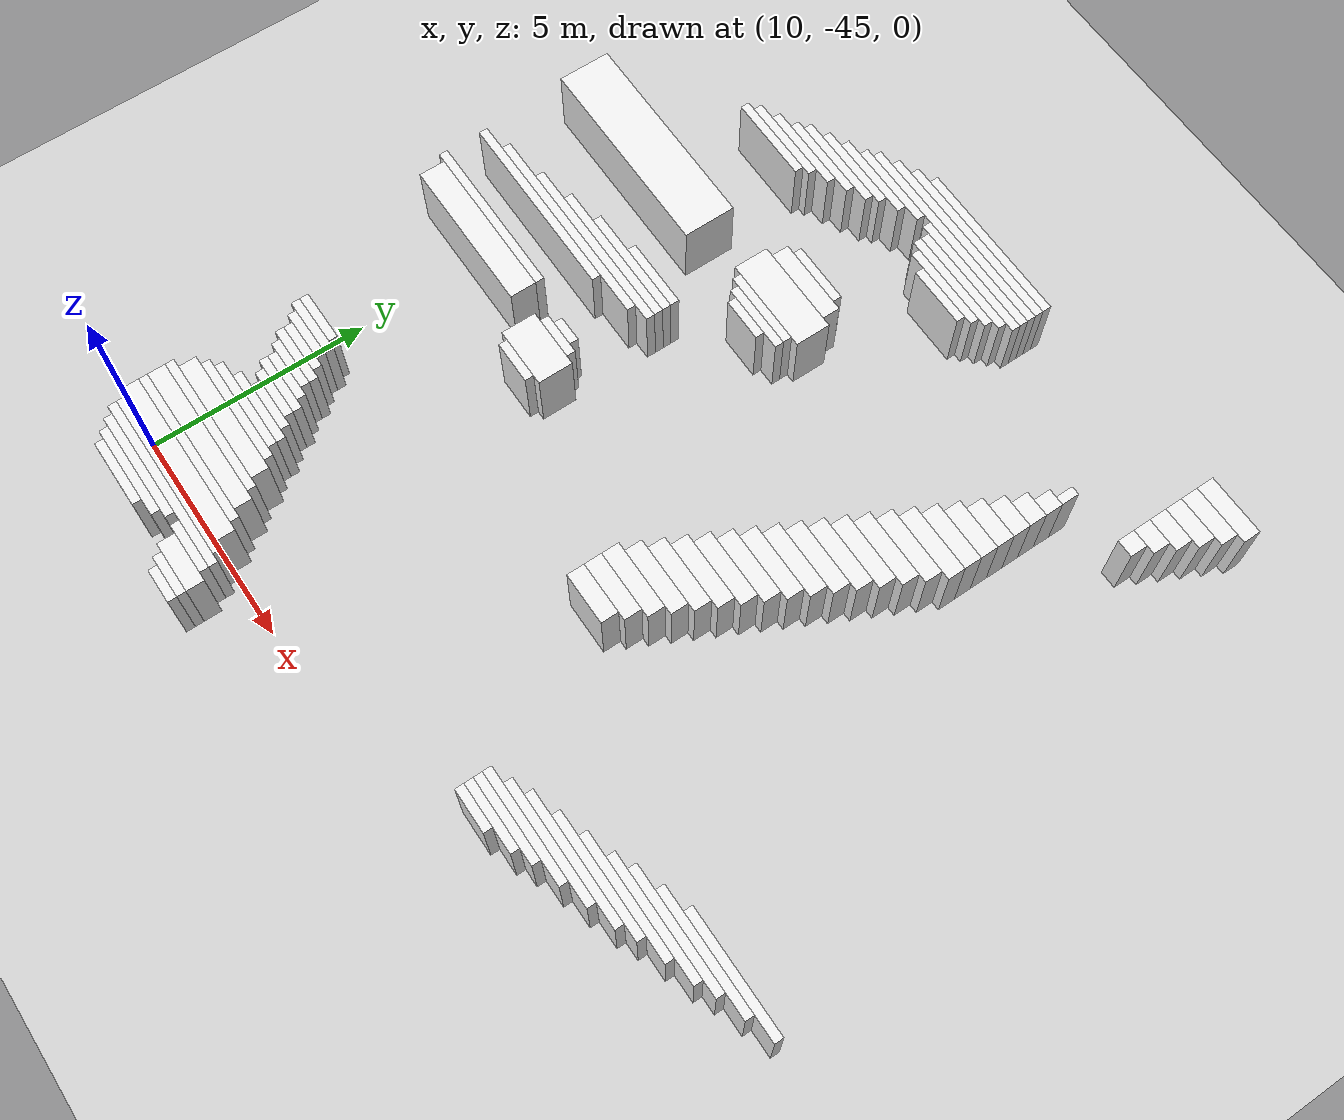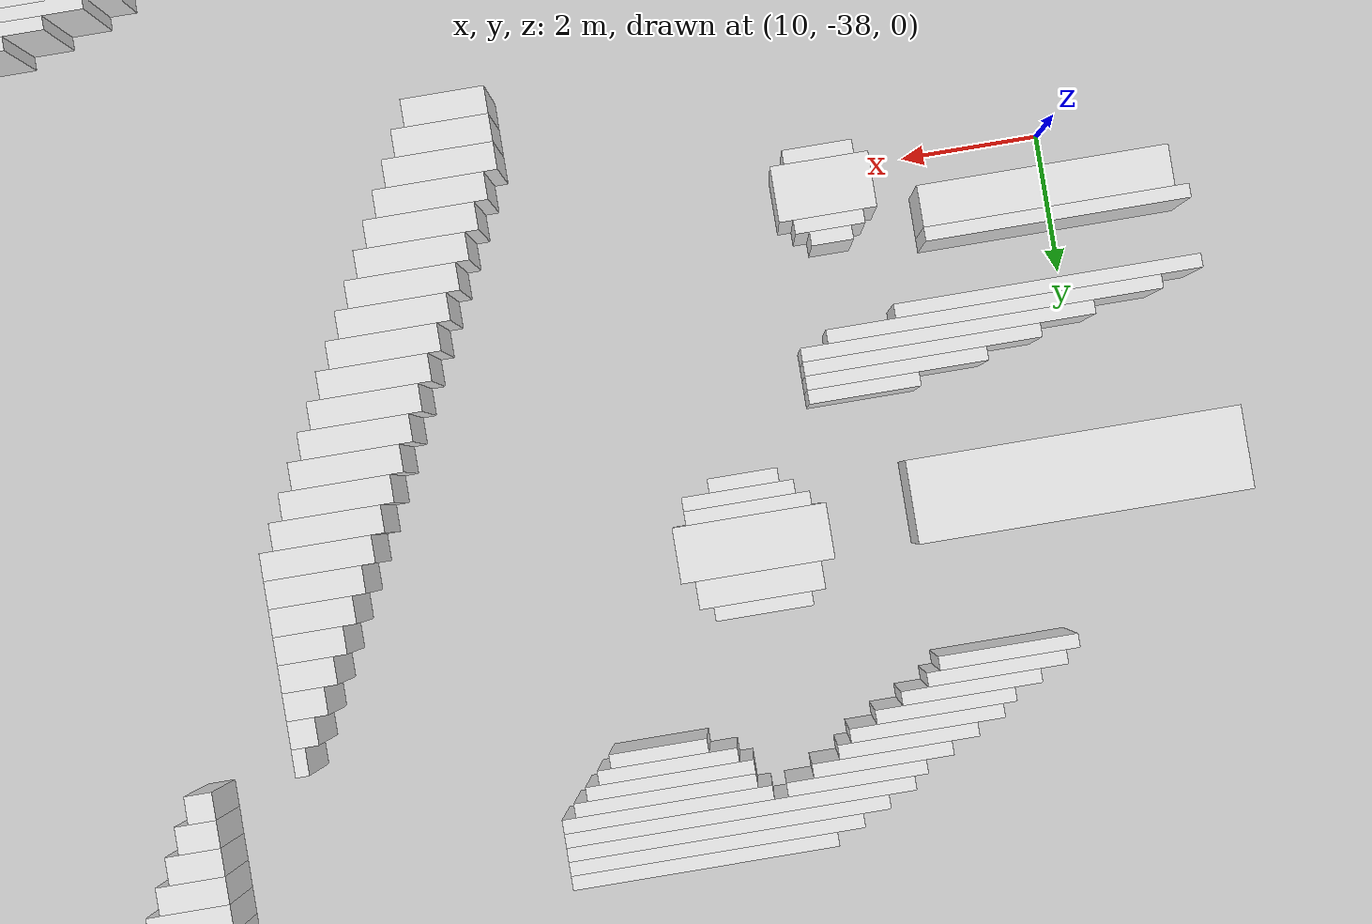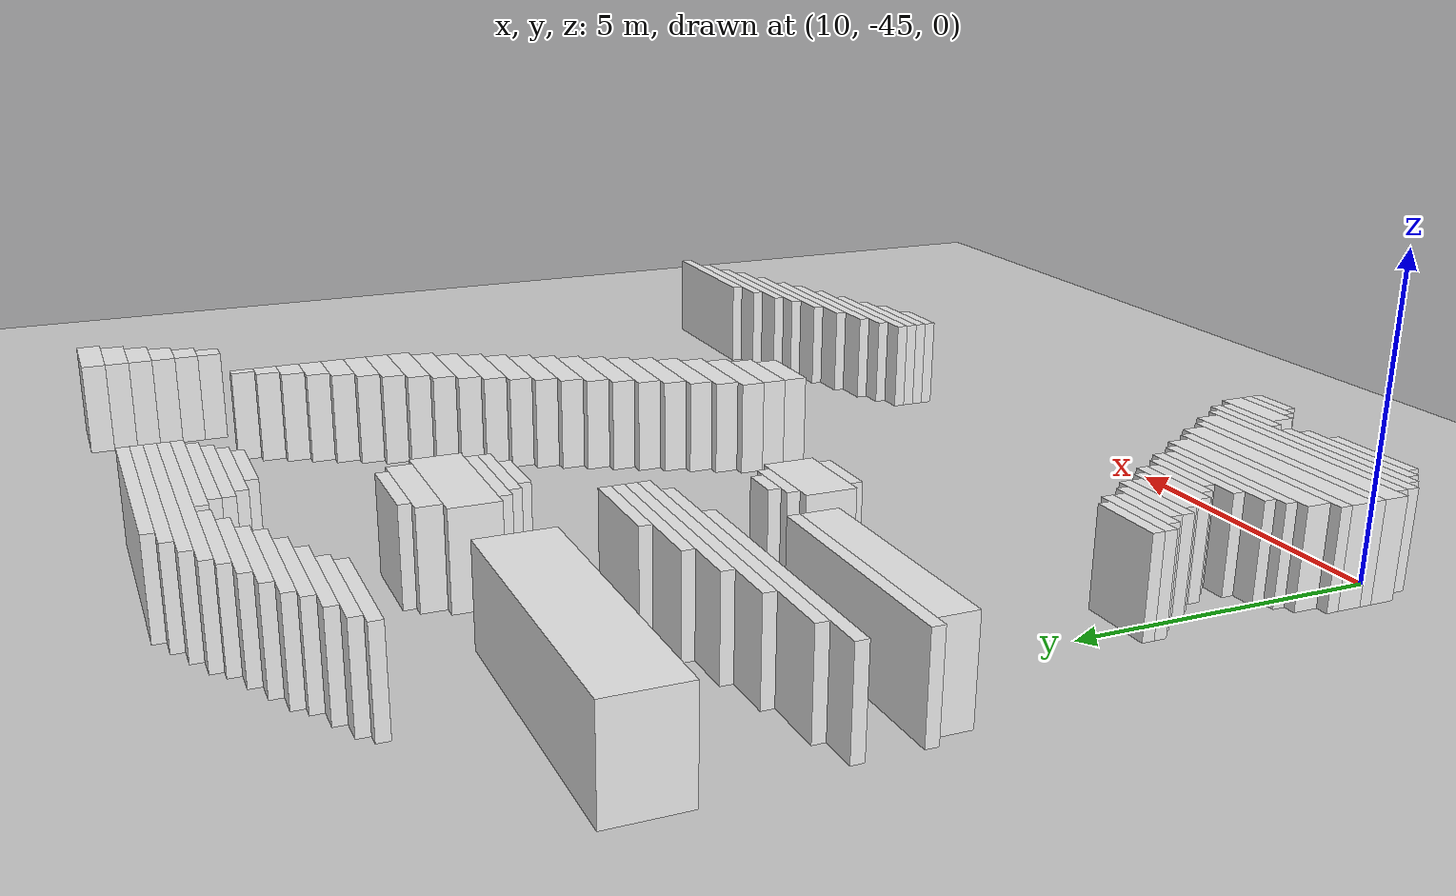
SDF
<sdf version="1.7">
 <world name="default">
  <model name="ground_plane">
   <static>1</static>
   <link name="link">
    <collision name="collision">
     <geometry><plane><normal>0 0 1</normal><size>120 120</size></plane></geometry>
    </collision>
    <visual name="visual">
     <geometry><plane><normal>0 0 1</normal><size>120 120</size></plane></geometry>
     <material>
      <script><uri>file://media/materials/scripts/gazebo.material</uri><name>Gazebo/Grey</name></script>
     </material>
    </visual>
   </link>
  </model>
  <model name="random_complex_01_model">
   <static>1</static>
   <link name="obs_2876">
    <pose>23.9000 -28.4000 0.8000 0 0 0</pose>
    <collision name="obs_2876_col"><geometry><box><size>1.4000 0.4000 1.6000</size></box></geometry></collision>
    <visual name="obs_2876_vis">
     <geometry><box><size>1.4000 0.4000 1.6000</size></box></geometry>
     <material>
      <script><uri>file://media/materials/scripts/gazebo.material</uri><name>Gazebo/White</name></script>
     </material>
    </visual>
   </link>
   <link name="obs_2882">
    <pose>16.5000 -28.5000 0.8000 0 0 0</pose>
    <collision name="obs_2882_col"><geometry><box><size>3.8000 0.2000 1.6000</size></box></geometry></collision>
    <visual name="obs_2882_vis">
     <geometry><box><size>3.8000 0.2000 1.6000</size></box></geometry>
     <material>
      <script><uri>file://media/materials/scripts/gazebo.material</uri><name>Gazebo/White</name></script>
     </material>
    </visual>
   </link>
   <link name="obs_2893">
    <pose>16.3000 -28.7000 0.8000 0 0 0</pose>
    <collision name="obs_2893_col"><geometry><box><size>4.2000 0.2000 1.6000</size></box></geometry></collision>
    <visual name="obs_2893_vis">
     <geometry><box><size>4.2000 0.2000 1.6000</size></box></geometry>
     <material>
      <script><uri>file://media/materials/scripts/gazebo.material</uri><name>Gazebo/White</name></script>
     </material>
    </visual>
   </link>
   <link name="obs_2896">
    <pose>23.8000 -28.8000 0.8000 0 0 0</pose>
    <collision name="obs_2896_col"><geometry><box><size>1.2000 0.4000 1.6000</size></box></geometry></collision>
    <visual name="obs_2896_vis">
     <geometry><box><size>1.2000 0.4000 1.6000</size></box></geometry>
     <material>
      <script><uri>file://media/materials/scripts/gazebo.material</uri><name>Gazebo/White</name></script>
     </material>
    </visual>
   </link>
   <link name="obs_2901">
    <pose>16.1000 -28.9000 0.8000 0 0 0</pose>
    <collision name="obs_2901_col"><geometry><box><size>4.6000 0.2000 1.6000</size></box></geometry></collision>
    <visual name="obs_2901_vis">
     <geometry><box><size>4.6000 0.2000 1.6000</size></box></geometry>
     <material>
      <script><uri>file://media/materials/scripts/gazebo.material</uri><name>Gazebo/White</name></script>
     </material>
    </visual>
   </link>
   <link name="obs_2907">
    <pose>15.9000 -29.1000 0.8000 0 0 0</pose>
    <collision name="obs_2907_col"><geometry><box><size>5.0000 0.2000 1.6000</size></box></geometry></collision>
    <visual name="obs_2907_vis">
     <geometry><box><size>5.0000 0.2000 1.6000</size></box></geometry>
     <material>
      <script><uri>file://media/materials/scripts/gazebo.material</uri><name>Gazebo/White</name></script>
     </material>
    </visual>
   </link>
   <link name="obs_2910">
    <pose>23.7000 -29.2000 0.8000 0 0 0</pose>
    <collision name="obs_2910_col"><geometry><box><size>1.0000 0.4000 1.6000</size></box></geometry></collision>
    <visual name="obs_2910_vis">
     <geometry><box><size>1.0000 0.4000 1.6000</size></box></geometry>
     <material>
      <script><uri>file://media/materials/scripts/gazebo.material</uri><name>Gazebo/White</name></script>
     </material>
    </visual>
   </link>
   <link name="obs_2913">
    <pose>14.2000 -29.3000 0.8000 0 0 0</pose>
    <collision name="obs_2913_col"><geometry><box><size>2.0000 0.2000 1.6000</size></box></geometry></collision>
    <visual name="obs_2913_vis">
     <geometry><box><size>2.0000 0.2000 1.6000</size></box></geometry>
     <material>
      <script><uri>file://media/materials/scripts/gazebo.material</uri><name>Gazebo/White</name></script>
     </material>
    </visual>
   </link>
   <link name="obs_2914">
    <pose>16.9000 -29.3000 0.8000 0 0 0</pose>
    <collision name="obs_2914_col"><geometry><box><size>3.0000 0.2000 1.6000</size></box></geometry></collision>
    <visual name="obs_2914_vis">
     <geometry><box><size>3.0000 0.2000 1.6000</size></box></geometry>
     <material>
      <script><uri>file://media/materials/scripts/gazebo.material</uri><name>Gazebo/White</name></script>
     </material>
    </visual>
   </link>
   <link name="obs_2918">
    <pose>13.8000 -29.5000 0.8000 0 0 0</pose>
    <collision name="obs_2918_col"><geometry><box><size>2.0000 0.2000 1.6000</size></box></geometry></collision>
    <visual name="obs_2918_vis">
     <geometry><box><size>2.0000 0.2000 1.6000</size></box></geometry>
     <material>
      <script><uri>file://media/materials/scripts/gazebo.material</uri><name>Gazebo/White</name></script>
     </material>
    </visual>
   </link>
   <link name="obs_2919">
    <pose>16.9000 -29.5000 0.8000 0 0 0</pose>
    <collision name="obs_2919_col"><geometry><box><size>2.6000 0.2000 1.6000</size></box></geometry></collision>
    <visual name="obs_2919_vis">
     <geometry><box><size>2.6000 0.2000 1.6000</size></box></geometry>
     <material>
      <script><uri>file://media/materials/scripts/gazebo.material</uri><name>Gazebo/White</name></script>
     </material>
    </visual>
   </link>
   <link name="obs_2922">
    <pose>23.6000 -29.6000 0.8000 0 0 0</pose>
    <collision name="obs_2922_col"><geometry><box><size>0.8000 0.4000 1.6000</size></box></geometry></collision>
    <visual name="obs_2922_vis">
     <geometry><box><size>0.8000 0.4000 1.6000</size></box></geometry>
     <material>
      <script><uri>file://media/materials/scripts/gazebo.material</uri><name>Gazebo/White</name></script>
     </material>
    </visual>
   </link>
   <link name="obs_2925">
    <pose>13.4000 -29.7000 0.8000 0 0 0</pose>
    <collision name="obs_2925_col"><geometry><box><size>2.0000 0.2000 1.6000</size></box></geometry></collision>
    <visual name="obs_2925_vis">
     <geometry><box><size>2.0000 0.2000 1.6000</size></box></geometry>
     <material>
      <script><uri>file://media/materials/scripts/gazebo.material</uri><name>Gazebo/White</name></script>
     </material>
    </visual>
   </link>
   <link name="obs_2926">
    <pose>16.8000 -29.7000 0.8000 0 0 0</pose>
    <collision name="obs_2926_col"><geometry><box><size>2.4000 0.2000 1.6000</size></box></geometry></collision>
    <visual name="obs_2926_vis">
     <geometry><box><size>2.4000 0.2000 1.6000</size></box></geometry>
     <material>
      <script><uri>file://media/materials/scripts/gazebo.material</uri><name>Gazebo/White</name></script>
     </material>
    </visual>
   </link>
   <link name="obs_2933">
    <pose>13.1000 -29.9000 0.8000 0 0 0</pose>
    <collision name="obs_2933_col"><geometry><box><size>2.2000 0.2000 1.6000</size></box></geometry></collision>
    <visual name="obs_2933_vis">
     <geometry><box><size>2.2000 0.2000 1.6000</size></box></geometry>
     <material>
      <script><uri>file://media/materials/scripts/gazebo.material</uri><name>Gazebo/White</name></script>
     </material>
    </visual>
   </link>
   <link name="obs_2934">
    <pose>16.8000 -29.9000 0.8000 0 0 0</pose>
    <collision name="obs_2934_col"><geometry><box><size>2.0000 0.2000 1.6000</size></box></geometry></collision>
    <visual name="obs_2934_vis">
     <geometry><box><size>2.0000 0.2000 1.6000</size></box></geometry>
     <material>
      <script><uri>file://media/materials/scripts/gazebo.material</uri><name>Gazebo/White</name></script>
     </material>
    </visual>
   </link>
   <link name="obs_2936">
    <pose>23.5000 -30.0000 0.8000 0 0 0</pose>
    <collision name="obs_2936_col"><geometry><box><size>0.6000 0.4000 1.6000</size></box></geometry></collision>
    <visual name="obs_2936_vis">
     <geometry><box><size>0.6000 0.4000 1.6000</size></box></geometry>
     <material>
      <script><uri>file://media/materials/scripts/gazebo.material</uri><name>Gazebo/White</name></script>
     </material>
    </visual>
   </link>
   <link name="obs_2940">
    <pose>12.8000 -30.1000 0.8000 0 0 0</pose>
    <collision name="obs_2940_col"><geometry><box><size>2.0000 0.2000 1.6000</size></box></geometry></collision>
    <visual name="obs_2940_vis">
     <geometry><box><size>2.0000 0.2000 1.6000</size></box></geometry>
     <material>
      <script><uri>file://media/materials/scripts/gazebo.material</uri><name>Gazebo/White</name></script>
     </material>
    </visual>
   </link>
   <link name="obs_2941">
    <pose>16.9000 -30.1000 0.8000 0 0 0</pose>
    <collision name="obs_2941_col"><geometry><box><size>1.4000 0.2000 1.6000</size></box></geometry></collision>
    <visual name="obs_2941_vis">
     <geometry><box><size>1.4000 0.2000 1.6000</size></box></geometry>
     <material>
      <script><uri>file://media/materials/scripts/gazebo.material</uri><name>Gazebo/White</name></script>
     </material>
    </visual>
   </link>
   <link name="obs_2946">
    <pose>12.4000 -30.3000 0.8000 0 0 0</pose>
    <collision name="obs_2946_col"><geometry><box><size>2.0000 0.2000 1.6000</size></box></geometry></collision>
    <visual name="obs_2946_vis">
     <geometry><box><size>2.0000 0.2000 1.6000</size></box></geometry>
     <material>
      <script><uri>file://media/materials/scripts/gazebo.material</uri><name>Gazebo/White</name></script>
     </material>
    </visual>
   </link>
   <link name="obs_2948">
    <pose>23.4000 -30.4000 0.8000 0 0 0</pose>
    <collision name="obs_2948_col"><geometry><box><size>0.4000 0.4000 1.6000</size></box></geometry></collision>
    <visual name="obs_2948_vis">
     <geometry><box><size>0.4000 0.4000 1.6000</size></box></geometry>
     <material>
      <script><uri>file://media/materials/scripts/gazebo.material</uri><name>Gazebo/White</name></script>
     </material>
    </visual>
   </link>
   <link name="obs_2952">
    <pose>12.0000 -30.5000 0.8000 0 0 0</pose>
    <collision name="obs_2952_col"><geometry><box><size>2.0000 0.2000 1.6000</size></box></geometry></collision>
    <visual name="obs_2952_vis">
     <geometry><box><size>2.0000 0.2000 1.6000</size></box></geometry>
     <material>
      <script><uri>file://media/materials/scripts/gazebo.material</uri><name>Gazebo/White</name></script>
     </material>
    </visual>
   </link>
   <link name="obs_2960">
    <pose>11.8000 -30.7000 0.8000 0 0 0</pose>
    <collision name="obs_2960_col"><geometry><box><size>2.0000 0.2000 1.6000</size></box></geometry></collision>
    <visual name="obs_2960_vis">
     <geometry><box><size>2.0000 0.2000 1.6000</size></box></geometry>
     <material>
      <script><uri>file://media/materials/scripts/gazebo.material</uri><name>Gazebo/White</name></script>
     </material>
    </visual>
   </link>
   <link name="obs_2962">
    <pose>21.9000 -30.8000 0.8000 0 0 0</pose>
    <collision name="obs_2962_col"><geometry><box><size>0.2000 0.4000 1.6000</size></box></geometry></collision>
    <visual name="obs_2962_vis">
     <geometry><box><size>0.2000 0.4000 1.6000</size></box></geometry>
     <material>
      <script><uri>file://media/materials/scripts/gazebo.material</uri><name>Gazebo/White</name></script>
     </material>
    </visual>
   </link>
   <link name="obs_2975">
    <pose>21.8000 -31.2000 0.8000 0 0 0</pose>
    <collision name="obs_2975_col"><geometry><box><size>0.4000 0.4000 1.6000</size></box></geometry></collision>
    <visual name="obs_2975_vis">
     <geometry><box><size>0.4000 0.4000 1.6000</size></box></geometry>
     <material>
      <script><uri>file://media/materials/scripts/gazebo.material</uri><name>Gazebo/White</name></script>
     </material>
    </visual>
   </link>
   <link name="obs_2987">
    <pose>21.7000 -31.6000 0.8000 0 0 0</pose>
    <collision name="obs_2987_col"><geometry><box><size>0.6000 0.4000 1.6000</size></box></geometry></collision>
    <visual name="obs_2987_vis">
     <geometry><box><size>0.6000 0.4000 1.6000</size></box></geometry>
     <material>
      <script><uri>file://media/materials/scripts/gazebo.material</uri><name>Gazebo/White</name></script>
     </material>
    </visual>
   </link>
   <link name="obs_2997">
    <pose>15.1000 -31.9000 0.8000 0 0 0</pose>
    <collision name="obs_2997_col"><geometry><box><size>1.4000 0.2000 1.6000</size></box></geometry></collision>
    <visual name="obs_2997_vis">
     <geometry><box><size>1.4000 0.2000 1.6000</size></box></geometry>
     <material>
      <script><uri>file://media/materials/scripts/gazebo.material</uri><name>Gazebo/White</name></script>
     </material>
    </visual>
   </link>
   <link name="obs_3000">
    <pose>21.6000 -32.0000 0.8000 0 0 0</pose>
    <collision name="obs_3000_col"><geometry><box><size>0.8000 0.4000 1.6000</size></box></geometry></collision>
    <visual name="obs_3000_vis">
     <geometry><box><size>0.8000 0.4000 1.6000</size></box></geometry>
     <material>
      <script><uri>file://media/materials/scripts/gazebo.material</uri><name>Gazebo/White</name></script>
     </material>
    </visual>
   </link>
   <link name="obs_3006">
    <pose>15.1000 -32.2000 0.8000 0 0 0</pose>
    <collision name="obs_3006_col"><geometry><box><size>1.8000 0.4000 1.6000</size></box></geometry></collision>
    <visual name="obs_3006_vis">
     <geometry><box><size>1.8000 0.4000 1.6000</size></box></geometry>
     <material>
      <script><uri>file://media/materials/scripts/gazebo.material</uri><name>Gazebo/White</name></script>
     </material>
    </visual>
   </link>
   <link name="obs_3013">
    <pose>21.5000 -32.4000 0.8000 0 0 0</pose>
    <collision name="obs_3013_col"><geometry><box><size>1.0000 0.4000 1.6000</size></box></geometry></collision>
    <visual name="obs_3013_vis">
     <geometry><box><size>1.0000 0.4000 1.6000</size></box></geometry>
     <material>
      <script><uri>file://media/materials/scripts/gazebo.material</uri><name>Gazebo/White</name></script>
     </material>
    </visual>
   </link>
   <link name="obs_3029">
    <pose>21.4000 -32.8000 0.8000 0 0 0</pose>
    <collision name="obs_3029_col"><geometry><box><size>1.2000 0.4000 1.6000</size></box></geometry></collision>
    <visual name="obs_3029_vis">
     <geometry><box><size>1.2000 0.4000 1.6000</size></box></geometry>
     <material>
      <script><uri>file://media/materials/scripts/gazebo.material</uri><name>Gazebo/White</name></script>
     </material>
    </visual>
   </link>
   <link name="obs_3035">
    <pose>15.1000 -32.8000 0.8000 0 0 0</pose>
    <collision name="obs_3035_col"><geometry><box><size>2.2000 0.8000 1.6000</size></box></geometry></collision>
    <visual name="obs_3035_vis">
     <geometry><box><size>2.2000 0.8000 1.6000</size></box></geometry>
     <material>
      <script><uri>file://media/materials/scripts/gazebo.material</uri><name>Gazebo/White</name></script>
     </material>
    </visual>
   </link>
   <link name="obs_3045">
    <pose>21.3000 -33.2000 0.8000 0 0 0</pose>
    <collision name="obs_3045_col"><geometry><box><size>1.4000 0.4000 1.6000</size></box></geometry></collision>
    <visual name="obs_3045_vis">
     <geometry><box><size>1.4000 0.4000 1.6000</size></box></geometry>
     <material>
      <script><uri>file://media/materials/scripts/gazebo.material</uri><name>Gazebo/White</name></script>
     </material>
    </visual>
   </link>
   <link name="obs_3051">
    <pose>15.1000 -33.3000 0.8000 0 0 0</pose>
    <collision name="obs_3051_col"><geometry><box><size>1.8000 0.2000 1.6000</size></box></geometry></collision>
    <visual name="obs_3051_vis">
     <geometry><box><size>1.8000 0.2000 1.6000</size></box></geometry>
     <material>
      <script><uri>file://media/materials/scripts/gazebo.material</uri><name>Gazebo/White</name></script>
     </material>
    </visual>
   </link>
   <link name="obs_3054">
    <pose>10.4000 -33.0000 0.8000 0 0 0</pose>
    <collision name="obs_3054_col"><geometry><box><size>4.8000 1.2000 1.6000</size></box></geometry></collision>
    <visual name="obs_3054_vis">
     <geometry><box><size>4.8000 1.2000 1.6000</size></box></geometry>
     <material>
      <script><uri>file://media/materials/scripts/gazebo.material</uri><name>Gazebo/White</name></script>
     </material>
    </visual>
   </link>
   <link name="obs_3058">
    <pose>15.2000 -33.5000 0.8000 0 0 0</pose>
    <collision name="obs_3058_col"><geometry><box><size>1.6000 0.2000 1.6000</size></box></geometry></collision>
    <visual name="obs_3058_vis">
     <geometry><box><size>1.6000 0.2000 1.6000</size></box></geometry>
     <material>
      <script><uri>file://media/materials/scripts/gazebo.material</uri><name>Gazebo/White</name></script>
     </material>
    </visual>
   </link>
   <link name="obs_3061">
    <pose>21.2000 -33.6000 0.8000 0 0 0</pose>
    <collision name="obs_3061_col"><geometry><box><size>1.6000 0.4000 1.6000</size></box></geometry></collision>
    <visual name="obs_3061_vis">
     <geometry><box><size>1.6000 0.4000 1.6000</size></box></geometry>
     <material>
      <script><uri>file://media/materials/scripts/gazebo.material</uri><name>Gazebo/White</name></script>
     </material>
    </visual>
   </link>
   <link name="obs_3066">
    <pose>15.1000 -33.7000 0.8000 0 0 0</pose>
    <collision name="obs_3066_col"><geometry><box><size>1.0000 0.2000 1.6000</size></box></geometry></collision>
    <visual name="obs_3066_vis">
     <geometry><box><size>1.0000 0.2000 1.6000</size></box></geometry>
     <material>
      <script><uri>file://media/materials/scripts/gazebo.material</uri><name>Gazebo/White</name></script>
     </material>
    </visual>
   </link>
   <link name="obs_3078">
    <pose>21.0000 -34.0000 0.8000 0 0 0</pose>
    <collision name="obs_3078_col"><geometry><box><size>1.6000 0.4000 1.6000</size></box></geometry></collision>
    <visual name="obs_3078_vis">
     <geometry><box><size>1.6000 0.4000 1.6000</size></box></geometry>
     <material>
      <script><uri>file://media/materials/scripts/gazebo.material</uri><name>Gazebo/White</name></script>
     </material>
    </visual>
   </link>
   <link name="obs_3092">
    <pose>20.8000 -34.4000 0.8000 0 0 0</pose>
    <collision name="obs_3092_col"><geometry><box><size>1.6000 0.4000 1.6000</size></box></geometry></collision>
    <visual name="obs_3092_vis">
     <geometry><box><size>1.6000 0.4000 1.6000</size></box></geometry>
     <material>
      <script><uri>file://media/materials/scripts/gazebo.material</uri><name>Gazebo/White</name></script>
     </material>
    </visual>
   </link>
   <link name="obs_3102">
    <pose>13.2000 -34.7000 0.8000 0 0 0</pose>
    <collision name="obs_3102_col"><geometry><box><size>1.6000 0.2000 1.6000</size></box></geometry></collision>
    <visual name="obs_3102_vis">
     <geometry><box><size>1.6000 0.2000 1.6000</size></box></geometry>
     <material>
      <script><uri>file://media/materials/scripts/gazebo.material</uri><name>Gazebo/White</name></script>
     </material>
    </visual>
   </link>
   <link name="obs_3108">
    <pose>20.6000 -34.8000 0.8000 0 0 0</pose>
    <collision name="obs_3108_col"><geometry><box><size>1.6000 0.4000 1.6000</size></box></geometry></collision>
    <visual name="obs_3108_vis">
     <geometry><box><size>1.6000 0.4000 1.6000</size></box></geometry>
     <material>
      <script><uri>file://media/materials/scripts/gazebo.material</uri><name>Gazebo/White</name></script>
     </material>
    </visual>
   </link>
   <link name="obs_3113">
    <pose>12.7000 -34.9000 0.8000 0 0 0</pose>
    <collision name="obs_3113_col"><geometry><box><size>2.6000 0.2000 1.6000</size></box></geometry></collision>
    <visual name="obs_3113_vis">
     <geometry><box><size>2.6000 0.2000 1.6000</size></box></geometry>
     <material>
      <script><uri>file://media/materials/scripts/gazebo.material</uri><name>Gazebo/White</name></script>
     </material>
    </visual>
   </link>
   <link name="obs_3119">
    <pose>12.3000 -35.1000 0.8000 0 0 0</pose>
    <collision name="obs_3119_col"><geometry><box><size>3.4000 0.2000 1.6000</size></box></geometry></collision>
    <visual name="obs_3119_vis">
     <geometry><box><size>3.4000 0.2000 1.6000</size></box></geometry>
     <material>
      <script><uri>file://media/materials/scripts/gazebo.material</uri><name>Gazebo/White</name></script>
     </material>
    </visual>
   </link>
   <link name="obs_3121">
    <pose>20.4000 -35.2000 0.8000 0 0 0</pose>
    <collision name="obs_3121_col"><geometry><box><size>1.6000 0.4000 1.6000</size></box></geometry></collision>
    <visual name="obs_3121_vis">
     <geometry><box><size>1.6000 0.4000 1.6000</size></box></geometry>
     <material>
      <script><uri>file://media/materials/scripts/gazebo.material</uri><name>Gazebo/White</name></script>
     </material>
    </visual>
   </link>
   <link name="obs_3126">
    <pose>11.9000 -35.3000 0.8000 0 0 0</pose>
    <collision name="obs_3126_col"><geometry><box><size>4.2000 0.2000 1.6000</size></box></geometry></collision>
    <visual name="obs_3126_vis">
     <geometry><box><size>4.2000 0.2000 1.6000</size></box></geometry>
     <material>
      <script><uri>file://media/materials/scripts/gazebo.material</uri><name>Gazebo/White</name></script>
     </material>
    </visual>
   </link>
   <link name="obs_3135">
    <pose>11.2000 -35.5000 0.8000 0 0 0</pose>
    <collision name="obs_3135_col"><geometry><box><size>4.8000 0.2000 1.6000</size></box></geometry></collision>
    <visual name="obs_3135_vis">
     <geometry><box><size>4.8000 0.2000 1.6000</size></box></geometry>
     <material>
      <script><uri>file://media/materials/scripts/gazebo.material</uri><name>Gazebo/White</name></script>
     </material>
    </visual>
   </link>
   <link name="obs_3138">
    <pose>20.2000 -35.6000 0.8000 0 0 0</pose>
    <collision name="obs_3138_col"><geometry><box><size>1.6000 0.4000 1.6000</size></box></geometry></collision>
    <visual name="obs_3138_vis">
     <geometry><box><size>1.6000 0.4000 1.6000</size></box></geometry>
     <material>
      <script><uri>file://media/materials/scripts/gazebo.material</uri><name>Gazebo/White</name></script>
     </material>
    </visual>
   </link>
   <link name="obs_3144">
    <pose>10.4000 -35.7000 0.8000 0 0 0</pose>
    <collision name="obs_3144_col"><geometry><box><size>4.4000 0.2000 1.6000</size></box></geometry></collision>
    <visual name="obs_3144_vis">
     <geometry><box><size>4.4000 0.2000 1.6000</size></box></geometry>
     <material>
      <script><uri>file://media/materials/scripts/gazebo.material</uri><name>Gazebo/White</name></script>
     </material>
    </visual>
   </link>
   <link name="obs_3155">
    <pose>20.0000 -36.0000 0.8000 0 0 0</pose>
    <collision name="obs_3155_col"><geometry><box><size>1.6000 0.4000 1.6000</size></box></geometry></collision>
    <visual name="obs_3155_vis">
     <geometry><box><size>1.6000 0.4000 1.6000</size></box></geometry>
     <material>
      <script><uri>file://media/materials/scripts/gazebo.material</uri><name>Gazebo/White</name></script>
     </material>
    </visual>
   </link>
   <link name="obs_3169">
    <pose>19.8000 -36.4000 0.8000 0 0 0</pose>
    <collision name="obs_3169_col"><geometry><box><size>1.6000 0.4000 1.6000</size></box></geometry></collision>
    <visual name="obs_3169_vis">
     <geometry><box><size>1.6000 0.4000 1.6000</size></box></geometry>
     <material>
      <script><uri>file://media/materials/scripts/gazebo.material</uri><name>Gazebo/White</name></script>
     </material>
    </visual>
   </link>
   <link name="obs_3180">
    <pose>10.1000 -36.7000 0.8000 0 0 0</pose>
    <collision name="obs_3180_col"><geometry><box><size>3.8000 0.2000 1.6000</size></box></geometry></collision>
    <visual name="obs_3180_vis">
     <geometry><box><size>3.8000 0.2000 1.6000</size></box></geometry>
     <material>
      <script><uri>file://media/materials/scripts/gazebo.material</uri><name>Gazebo/White</name></script>
     </material>
    </visual>
   </link>
   <link name="obs_3183">
    <pose>19.6000 -36.8000 0.8000 0 0 0</pose>
    <collision name="obs_3183_col"><geometry><box><size>1.6000 0.4000 1.6000</size></box></geometry></collision>
    <visual name="obs_3183_vis">
     <geometry><box><size>1.6000 0.4000 1.6000</size></box></geometry>
     <material>
      <script><uri>file://media/materials/scripts/gazebo.material</uri><name>Gazebo/White</name></script>
     </material>
    </visual>
   </link>
   <link name="obs_3187">
    <pose>13.3000 -36.9000 0.8000 0 0 0</pose>
    <collision name="obs_3187_col"><geometry><box><size>0.6000 0.2000 1.6000</size></box></geometry></collision>
    <visual name="obs_3187_vis">
     <geometry><box><size>0.6000 0.2000 1.6000</size></box></geometry>
     <material>
      <script><uri>file://media/materials/scripts/gazebo.material</uri><name>Gazebo/White</name></script>
     </material>
    </visual>
   </link>
   <link name="obs_3192">
    <pose>13.3000 -37.1000 0.8000 0 0 0</pose>
    <collision name="obs_3192_col"><geometry><box><size>1.0000 0.2000 1.6000</size></box></geometry></collision>
    <visual name="obs_3192_vis">
     <geometry><box><size>1.0000 0.2000 1.6000</size></box></geometry>
     <material>
      <script><uri>file://media/materials/scripts/gazebo.material</uri><name>Gazebo/White</name></script>
     </material>
    </visual>
   </link>
   <link name="obs_3196">
    <pose>10.2000 -37.1000 0.8000 0 0 0</pose>
    <collision name="obs_3196_col"><geometry><box><size>3.6000 0.6000 1.6000</size></box></geometry></collision>
    <visual name="obs_3196_vis">
     <geometry><box><size>3.6000 0.6000 1.6000</size></box></geometry>
     <material>
      <script><uri>file://media/materials/scripts/gazebo.material</uri><name>Gazebo/White</name></script>
     </material>
    </visual>
   </link>
   <link name="obs_3198">
    <pose>19.4000 -37.2000 0.8000 0 0 0</pose>
    <collision name="obs_3198_col"><geometry><box><size>1.6000 0.4000 1.6000</size></box></geometry></collision>
    <visual name="obs_3198_vis">
     <geometry><box><size>1.6000 0.4000 1.6000</size></box></geometry>
     <material>
      <script><uri>file://media/materials/scripts/gazebo.material</uri><name>Gazebo/White</name></script>
     </material>
    </visual>
   </link>
   <link name="obs_3210">
    <pose>19.2000 -37.6000 0.8000 0 0 0</pose>
    <collision name="obs_3210_col"><geometry><box><size>1.6000 0.4000 1.6000</size></box></geometry></collision>
    <visual name="obs_3210_vis">
     <geometry><box><size>1.6000 0.4000 1.6000</size></box></geometry>
     <material>
      <script><uri>file://media/materials/scripts/gazebo.material</uri><name>Gazebo/White</name></script>
     </material>
    </visual>
   </link>
   <link name="obs_3218">
    <pose>13.3000 -37.6000 0.8000 0 0 0</pose>
    <collision name="obs_3218_col"><geometry><box><size>1.4000 0.8000 1.6000</size></box></geometry></collision>
    <visual name="obs_3218_vis">
     <geometry><box><size>1.4000 0.8000 1.6000</size></box></geometry>
     <material>
      <script><uri>file://media/materials/scripts/gazebo.material</uri><name>Gazebo/White</name></script>
     </material>
    </visual>
   </link>
   <link name="obs_3227">
    <pose>19.0000 -38.0000 0.8000 0 0 0</pose>
    <collision name="obs_3227_col"><geometry><box><size>1.6000 0.4000 1.6000</size></box></geometry></collision>
    <visual name="obs_3227_vis">
     <geometry><box><size>1.6000 0.4000 1.6000</size></box></geometry>
     <material>
      <script><uri>file://media/materials/scripts/gazebo.material</uri><name>Gazebo/White</name></script>
     </material>
    </visual>
   </link>
   <link name="obs_3233">
    <pose>13.3000 -38.1000 0.8000 0 0 0</pose>
    <collision name="obs_3233_col"><geometry><box><size>1.0000 0.2000 1.6000</size></box></geometry></collision>
    <visual name="obs_3233_vis">
     <geometry><box><size>1.0000 0.2000 1.6000</size></box></geometry>
     <material>
      <script><uri>file://media/materials/scripts/gazebo.material</uri><name>Gazebo/White</name></script>
     </material>
    </visual>
   </link>
   <link name="obs_3244">
    <pose>18.8000 -38.4000 0.8000 0 0 0</pose>
    <collision name="obs_3244_col"><geometry><box><size>1.6000 0.4000 1.6000</size></box></geometry></collision>
    <visual name="obs_3244_vis">
     <geometry><box><size>1.6000 0.4000 1.6000</size></box></geometry>
     <material>
      <script><uri>file://media/materials/scripts/gazebo.material</uri><name>Gazebo/White</name></script>
     </material>
    </visual>
   </link>
   <link name="obs_3259">
    <pose>18.6000 -38.8000 0.8000 0 0 0</pose>
    <collision name="obs_3259_col"><geometry><box><size>1.6000 0.4000 1.6000</size></box></geometry></collision>
    <visual name="obs_3259_vis">
     <geometry><box><size>1.6000 0.4000 1.6000</size></box></geometry>
     <material>
      <script><uri>file://media/materials/scripts/gazebo.material</uri><name>Gazebo/White</name></script>
     </material>
    </visual>
   </link>
   <link name="obs_3273">
    <pose>18.5000 -39.2000 0.8000 0 0 0</pose>
    <collision name="obs_3273_col"><geometry><box><size>1.4000 0.4000 1.6000</size></box></geometry></collision>
    <visual name="obs_3273_vis">
     <geometry><box><size>1.4000 0.4000 1.6000</size></box></geometry>
     <material>
      <script><uri>file://media/materials/scripts/gazebo.material</uri><name>Gazebo/White</name></script>
     </material>
    </visual>
   </link>
   <link name="obs_3287">
    <pose>18.4000 -39.6000 0.8000 0 0 0</pose>
    <collision name="obs_3287_col"><geometry><box><size>1.2000 0.4000 1.6000</size></box></geometry></collision>
    <visual name="obs_3287_vis">
     <geometry><box><size>1.2000 0.4000 1.6000</size></box></geometry>
     <material>
      <script><uri>file://media/materials/scripts/gazebo.material</uri><name>Gazebo/White</name></script>
     </material>
    </visual>
   </link>
   <link name="obs_3338">
    <pose>10.2000 -40.9000 0.8000 0 0 0</pose>
    <collision name="obs_3338_col"><geometry><box><size>1.2000 0.2000 1.6000</size></box></geometry></collision>
    <visual name="obs_3338_vis">
     <geometry><box><size>1.2000 0.2000 1.6000</size></box></geometry>
     <material>
      <script><uri>file://media/materials/scripts/gazebo.material</uri><name>Gazebo/White</name></script>
     </material>
    </visual>
   </link>
   <link name="obs_3345">
    <pose>10.3000 -41.1000 0.8000 0 0 0</pose>
    <collision name="obs_3345_col"><geometry><box><size>1.4000 0.2000 1.6000</size></box></geometry></collision>
    <visual name="obs_3345_vis">
     <geometry><box><size>1.4000 0.2000 1.6000</size></box></geometry>
     <material>
      <script><uri>file://media/materials/scripts/gazebo.material</uri><name>Gazebo/White</name></script>
     </material>
    </visual>
   </link>
   <link name="obs_3351">
    <pose>10.4000 -41.3000 0.8000 0 0 0</pose>
    <collision name="obs_3351_col"><geometry><box><size>1.2000 0.2000 1.6000</size></box></geometry></collision>
    <visual name="obs_3351_vis">
     <geometry><box><size>1.2000 0.2000 1.6000</size></box></geometry>
     <material>
      <script><uri>file://media/materials/scripts/gazebo.material</uri><name>Gazebo/White</name></script>
     </material>
    </visual>
   </link>
   <link name="obs_3359">
    <pose>10.6000 -41.5000 0.8000 0 0 0</pose>
    <collision name="obs_3359_col"><geometry><box><size>1.2000 0.2000 1.6000</size></box></geometry></collision>
    <visual name="obs_3359_vis">
     <geometry><box><size>1.2000 0.2000 1.6000</size></box></geometry>
     <material>
      <script><uri>file://media/materials/scripts/gazebo.material</uri><name>Gazebo/White</name></script>
     </material>
    </visual>
   </link>
   <link name="obs_3360">
    <pose>25.8000 -41.5000 0.8000 0 0 0</pose>
    <collision name="obs_3360_col"><geometry><box><size>2.8000 0.2000 1.6000</size></box></geometry></collision>
    <visual name="obs_3360_vis">
     <geometry><box><size>2.8000 0.2000 1.6000</size></box></geometry>
     <material>
      <script><uri>file://media/materials/scripts/gazebo.material</uri><name>Gazebo/White</name></script>
     </material>
    </visual>
   </link>
   <link name="obs_3366">
    <pose>10.7000 -41.7000 0.8000 0 0 0</pose>
    <collision name="obs_3366_col"><geometry><box><size>1.4000 0.2000 1.6000</size></box></geometry></collision>
    <visual name="obs_3366_vis">
     <geometry><box><size>1.4000 0.2000 1.6000</size></box></geometry>
     <material>
      <script><uri>file://media/materials/scripts/gazebo.material</uri><name>Gazebo/White</name></script>
     </material>
    </visual>
   </link>
   <link name="obs_3367">
    <pose>25.2000 -41.7000 0.8000 0 0 0</pose>
    <collision name="obs_3367_col"><geometry><box><size>2.8000 0.2000 1.6000</size></box></geometry></collision>
    <visual name="obs_3367_vis">
     <geometry><box><size>2.8000 0.2000 1.6000</size></box></geometry>
     <material>
      <script><uri>file://media/materials/scripts/gazebo.material</uri><name>Gazebo/White</name></script>
     </material>
    </visual>
   </link>
   <link name="obs_3375">
    <pose>10.8000 -41.9000 0.8000 0 0 0</pose>
    <collision name="obs_3375_col"><geometry><box><size>1.2000 0.2000 1.6000</size></box></geometry></collision>
    <visual name="obs_3375_vis">
     <geometry><box><size>1.2000 0.2000 1.6000</size></box></geometry>
     <material>
      <script><uri>file://media/materials/scripts/gazebo.material</uri><name>Gazebo/White</name></script>
     </material>
    </visual>
   </link>
   <link name="obs_3376">
    <pose>24.6000 -41.9000 0.8000 0 0 0</pose>
    <collision name="obs_3376_col"><geometry><box><size>2.8000 0.2000 1.6000</size></box></geometry></collision>
    <visual name="obs_3376_vis">
     <geometry><box><size>2.8000 0.2000 1.6000</size></box></geometry>
     <material>
      <script><uri>file://media/materials/scripts/gazebo.material</uri><name>Gazebo/White</name></script>
     </material>
    </visual>
   </link>
   <link name="obs_3383">
    <pose>11.0000 -42.1000 0.8000 0 0 0</pose>
    <collision name="obs_3383_col"><geometry><box><size>1.2000 0.2000 1.6000</size></box></geometry></collision>
    <visual name="obs_3383_vis">
     <geometry><box><size>1.2000 0.2000 1.6000</size></box></geometry>
     <material>
      <script><uri>file://media/materials/scripts/gazebo.material</uri><name>Gazebo/White</name></script>
     </material>
    </visual>
   </link>
   <link name="obs_3384">
    <pose>24.2000 -42.1000 0.8000 0 0 0</pose>
    <collision name="obs_3384_col"><geometry><box><size>2.8000 0.2000 1.6000</size></box></geometry></collision>
    <visual name="obs_3384_vis">
     <geometry><box><size>2.8000 0.2000 1.6000</size></box></geometry>
     <material>
      <script><uri>file://media/materials/scripts/gazebo.material</uri><name>Gazebo/White</name></script>
     </material>
    </visual>
   </link>
   <link name="obs_3392">
    <pose>11.1000 -42.3000 0.8000 0 0 0</pose>
    <collision name="obs_3392_col"><geometry><box><size>1.4000 0.2000 1.6000</size></box></geometry></collision>
    <visual name="obs_3392_vis">
     <geometry><box><size>1.4000 0.2000 1.6000</size></box></geometry>
     <material>
      <script><uri>file://media/materials/scripts/gazebo.material</uri><name>Gazebo/White</name></script>
     </material>
    </visual>
   </link>
   <link name="obs_3393">
    <pose>23.6000 -42.3000 0.8000 0 0 0</pose>
    <collision name="obs_3393_col"><geometry><box><size>2.8000 0.2000 1.6000</size></box></geometry></collision>
    <visual name="obs_3393_vis">
     <geometry><box><size>2.8000 0.2000 1.6000</size></box></geometry>
     <material>
      <script><uri>file://media/materials/scripts/gazebo.material</uri><name>Gazebo/White</name></script>
     </material>
    </visual>
   </link>
   <link name="obs_3400">
    <pose>11.2000 -42.5000 0.8000 0 0 0</pose>
    <collision name="obs_3400_col"><geometry><box><size>1.2000 0.2000 1.6000</size></box></geometry></collision>
    <visual name="obs_3400_vis">
     <geometry><box><size>1.2000 0.2000 1.6000</size></box></geometry>
     <material>
      <script><uri>file://media/materials/scripts/gazebo.material</uri><name>Gazebo/White</name></script>
     </material>
    </visual>
   </link>
   <link name="obs_3401">
    <pose>23.0000 -42.5000 0.8000 0 0 0</pose>
    <collision name="obs_3401_col"><geometry><box><size>2.8000 0.2000 1.6000</size></box></geometry></collision>
    <visual name="obs_3401_vis">
     <geometry><box><size>2.8000 0.2000 1.6000</size></box></geometry>
     <material>
      <script><uri>file://media/materials/scripts/gazebo.material</uri><name>Gazebo/White</name></script>
     </material>
    </visual>
   </link>
   <link name="obs_3408">
    <pose>11.4000 -42.7000 0.8000 0 0 0</pose>
    <collision name="obs_3408_col"><geometry><box><size>1.2000 0.2000 1.6000</size></box></geometry></collision>
    <visual name="obs_3408_vis">
     <geometry><box><size>1.2000 0.2000 1.6000</size></box></geometry>
     <material>
      <script><uri>file://media/materials/scripts/gazebo.material</uri><name>Gazebo/White</name></script>
     </material>
    </visual>
   </link>
   <link name="obs_3409">
    <pose>22.5000 -42.7000 0.8000 0 0 0</pose>
    <collision name="obs_3409_col"><geometry><box><size>3.0000 0.2000 1.6000</size></box></geometry></collision>
    <visual name="obs_3409_vis">
     <geometry><box><size>3.0000 0.2000 1.6000</size></box></geometry>
     <material>
      <script><uri>file://media/materials/scripts/gazebo.material</uri><name>Gazebo/White</name></script>
     </material>
    </visual>
   </link>
   <link name="obs_3414">
    <pose>11.3000 -42.9000 0.8000 0 0 0</pose>
    <collision name="obs_3414_col"><geometry><box><size>1.8000 0.2000 1.6000</size></box></geometry></collision>
    <visual name="obs_3414_vis">
     <geometry><box><size>1.8000 0.2000 1.6000</size></box></geometry>
     <material>
      <script><uri>file://media/materials/scripts/gazebo.material</uri><name>Gazebo/White</name></script>
     </material>
    </visual>
   </link>
   <link name="obs_3415">
    <pose>22.0000 -42.9000 0.8000 0 0 0</pose>
    <collision name="obs_3415_col"><geometry><box><size>2.8000 0.2000 1.6000</size></box></geometry></collision>
    <visual name="obs_3415_vis">
     <geometry><box><size>2.8000 0.2000 1.6000</size></box></geometry>
     <material>
      <script><uri>file://media/materials/scripts/gazebo.material</uri><name>Gazebo/White</name></script>
     </material>
    </visual>
   </link>
   <link name="obs_3419">
    <pose>11.1000 -43.1000 0.8000 0 0 0</pose>
    <collision name="obs_3419_col"><geometry><box><size>2.2000 0.2000 1.6000</size></box></geometry></collision>
    <visual name="obs_3419_vis">
     <geometry><box><size>2.2000 0.2000 1.6000</size></box></geometry>
     <material>
      <script><uri>file://media/materials/scripts/gazebo.material</uri><name>Gazebo/White</name></script>
     </material>
    </visual>
   </link>
   <link name="obs_3420">
    <pose>21.5000 -43.1000 0.8000 0 0 0</pose>
    <collision name="obs_3420_col"><geometry><box><size>2.6000 0.2000 1.6000</size></box></geometry></collision>
    <visual name="obs_3420_vis">
     <geometry><box><size>2.6000 0.2000 1.6000</size></box></geometry>
     <material>
      <script><uri>file://media/materials/scripts/gazebo.material</uri><name>Gazebo/White</name></script>
     </material>
    </visual>
   </link>
   <link name="obs_3426">
    <pose>11.1000 -43.3000 0.8000 0 0 0</pose>
    <collision name="obs_3426_col"><geometry><box><size>2.6000 0.2000 1.6000</size></box></geometry></collision>
    <visual name="obs_3426_vis">
     <geometry><box><size>2.6000 0.2000 1.6000</size></box></geometry>
     <material>
      <script><uri>file://media/materials/scripts/gazebo.material</uri><name>Gazebo/White</name></script>
     </material>
    </visual>
   </link>
   <link name="obs_3427">
    <pose>21.2000 -43.3000 0.8000 0 0 0</pose>
    <collision name="obs_3427_col"><geometry><box><size>2.0000 0.2000 1.6000</size></box></geometry></collision>
    <visual name="obs_3427_vis">
     <geometry><box><size>2.0000 0.2000 1.6000</size></box></geometry>
     <material>
      <script><uri>file://media/materials/scripts/gazebo.material</uri><name>Gazebo/White</name></script>
     </material>
    </visual>
   </link>
   <link name="obs_3432">
    <pose>21.0000 -43.5000 0.8000 0 0 0</pose>
    <collision name="obs_3432_col"><geometry><box><size>1.6000 0.2000 1.6000</size></box></geometry></collision>
    <visual name="obs_3432_vis">
     <geometry><box><size>1.6000 0.2000 1.6000</size></box></geometry>
     <material>
      <script><uri>file://media/materials/scripts/gazebo.material</uri><name>Gazebo/White</name></script>
     </material>
    </visual>
   </link>
   <link name="obs_3434">
    <pose>11.1000 -43.6000 0.8000 0 0 0</pose>
    <collision name="obs_3434_col"><geometry><box><size>3.0000 0.4000 1.6000</size></box></geometry></collision>
    <visual name="obs_3434_vis">
     <geometry><box><size>3.0000 0.4000 1.6000</size></box></geometry>
     <material>
      <script><uri>file://media/materials/scripts/gazebo.material</uri><name>Gazebo/White</name></script>
     </material>
    </visual>
   </link>
   <link name="obs_3437">
    <pose>20.7000 -43.7000 0.8000 0 0 0</pose>
    <collision name="obs_3437_col"><geometry><box><size>1.0000 0.2000 1.6000</size></box></geometry></collision>
    <visual name="obs_3437_vis">
     <geometry><box><size>1.0000 0.2000 1.6000</size></box></geometry>
     <material>
      <script><uri>file://media/materials/scripts/gazebo.material</uri><name>Gazebo/White</name></script>
     </material>
    </visual>
   </link>
   <link name="obs_3442">
    <pose>11.1000 -43.9000 0.8000 0 0 0</pose>
    <collision name="obs_3442_col"><geometry><box><size>3.4000 0.2000 1.6000</size></box></geometry></collision>
    <visual name="obs_3442_vis">
     <geometry><box><size>3.4000 0.2000 1.6000</size></box></geometry>
     <material>
      <script><uri>file://media/materials/scripts/gazebo.material</uri><name>Gazebo/White</name></script>
     </material>
    </visual>
   </link>
   <link name="obs_3450">
    <pose>11.2000 -44.2000 0.8000 0 0 0</pose>
    <collision name="obs_3450_col"><geometry><box><size>3.6000 0.4000 1.6000</size></box></geometry></collision>
    <visual name="obs_3450_vis">
     <geometry><box><size>3.6000 0.4000 1.6000</size></box></geometry>
     <material>
      <script><uri>file://media/materials/scripts/gazebo.material</uri><name>Gazebo/White</name></script>
     </material>
    </visual>
   </link>
   <link name="obs_3453">
    <pose>11.3000 -44.5000 0.8000 0 0 0</pose>
    <collision name="obs_3453_col"><geometry><box><size>3.8000 0.2000 1.6000</size></box></geometry></collision>
    <visual name="obs_3453_vis">
     <geometry><box><size>3.8000 0.2000 1.6000</size></box></geometry>
     <material>
      <script><uri>file://media/materials/scripts/gazebo.material</uri><name>Gazebo/White</name></script>
     </material>
    </visual>
   </link>
   <link name="obs_3463">
    <pose>11.4000 -44.8000 0.8000 0 0 0</pose>
    <collision name="obs_3463_col"><geometry><box><size>4.0000 0.4000 1.6000</size></box></geometry></collision>
    <visual name="obs_3463_vis">
     <geometry><box><size>4.0000 0.4000 1.6000</size></box></geometry>
     <material>
      <script><uri>file://media/materials/scripts/gazebo.material</uri><name>Gazebo/White</name></script>
     </material>
    </visual>
   </link>
   <link name="obs_3476">
    <pose>11.6000 -45.1000 0.8000 0 0 0</pose>
    <collision name="obs_3476_col"><geometry><box><size>4.0000 0.2000 1.6000</size></box></geometry></collision>
    <visual name="obs_3476_vis">
     <geometry><box><size>4.0000 0.2000 1.6000</size></box></geometry>
     <material>
      <script><uri>file://media/materials/scripts/gazebo.material</uri><name>Gazebo/White</name></script>
     </material>
    </visual>
   </link>
   <link name="obs_3485">
    <pose>11.7000 -45.3000 0.8000 0 0 0</pose>
    <collision name="obs_3485_col"><geometry><box><size>4.2000 0.2000 1.6000</size></box></geometry></collision>
    <visual name="obs_3485_vis">
     <geometry><box><size>4.2000 0.2000 1.6000</size></box></geometry>
     <material>
      <script><uri>file://media/materials/scripts/gazebo.material</uri><name>Gazebo/White</name></script>
     </material>
    </visual>
   </link>
   <link name="obs_3493">
    <pose>11.1000 -45.5000 0.8000 0 0 0</pose>
    <collision name="obs_3493_col"><geometry><box><size>2.6000 0.2000 1.6000</size></box></geometry></collision>
    <visual name="obs_3493_vis">
     <geometry><box><size>2.6000 0.2000 1.6000</size></box></geometry>
     <material>
      <script><uri>file://media/materials/scripts/gazebo.material</uri><name>Gazebo/White</name></script>
     </material>
    </visual>
   </link>
   <link name="obs_3494">
    <pose>13.2000 -45.5000 0.8000 0 0 0</pose>
    <collision name="obs_3494_col"><geometry><box><size>1.2000 0.2000 1.6000</size></box></geometry></collision>
    <visual name="obs_3494_vis">
     <geometry><box><size>1.2000 0.2000 1.6000</size></box></geometry>
     <material>
      <script><uri>file://media/materials/scripts/gazebo.material</uri><name>Gazebo/White</name></script>
     </material>
    </visual>
   </link>
   <link name="obs_3503">
    <pose>11.1000 -45.7000 0.8000 0 0 0</pose>
    <collision name="obs_3503_col"><geometry><box><size>2.2000 0.2000 1.6000</size></box></geometry></collision>
    <visual name="obs_3503_vis">
     <geometry><box><size>2.2000 0.2000 1.6000</size></box></geometry>
     <material>
      <script><uri>file://media/materials/scripts/gazebo.material</uri><name>Gazebo/White</name></script>
     </material>
    </visual>
   </link>
   <link name="obs_3507">
    <pose>13.4000 -45.8000 0.8000 0 0 0</pose>
    <collision name="obs_3507_col"><geometry><box><size>1.2000 0.4000 1.6000</size></box></geometry></collision>
    <visual name="obs_3507_vis">
     <geometry><box><size>1.2000 0.4000 1.6000</size></box></geometry>
     <material>
      <script><uri>file://media/materials/scripts/gazebo.material</uri><name>Gazebo/White</name></script>
     </material>
    </visual>
   </link>
   <link name="obs_3511">
    <pose>11.0000 -45.9000 0.8000 0 0 0</pose>
    <collision name="obs_3511_col"><geometry><box><size>1.6000 0.2000 1.6000</size></box></geometry></collision>
    <visual name="obs_3511_vis">
     <geometry><box><size>1.6000 0.2000 1.6000</size></box></geometry>
     <material>
      <script><uri>file://media/materials/scripts/gazebo.material</uri><name>Gazebo/White</name></script>
     </material>
    </visual>
   </link>
   <link name="obs_3516">
    <pose>13.5000 -46.1000 0.8000 0 0 0</pose>
    <collision name="obs_3516_col"><geometry><box><size>1.0000 0.2000 1.6000</size></box></geometry></collision>
    <visual name="obs_3516_vis">
     <geometry><box><size>1.0000 0.2000 1.6000</size></box></geometry>
     <material>
      <script><uri>file://media/materials/scripts/gazebo.material</uri><name>Gazebo/White</name></script>
     </material>
    </visual>
   </link>
   <link name="obs_3520">
    <pose>13.6000 -46.3000 0.8000 0 0 0</pose>
    <collision name="obs_3520_col"><geometry><box><size>0.8000 0.2000 1.6000</size></box></geometry></collision>
    <visual name="obs_3520_vis">
     <geometry><box><size>0.8000 0.2000 1.6000</size></box></geometry>
     <material>
      <script><uri>file://media/materials/scripts/gazebo.material</uri><name>Gazebo/White</name></script>
     </material>
    </visual>
   </link>
  </model>
 </world>
</sdf>
